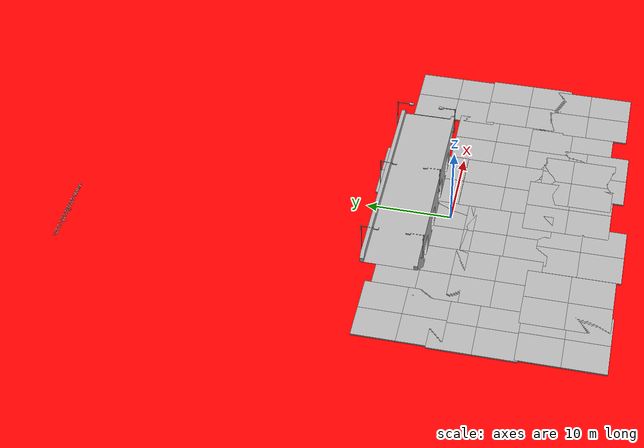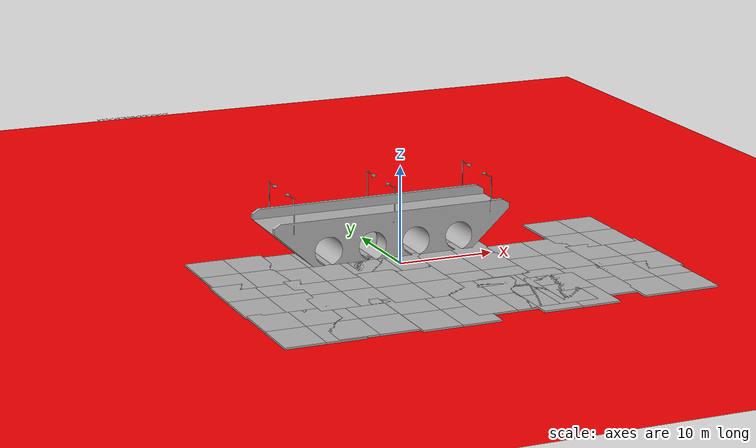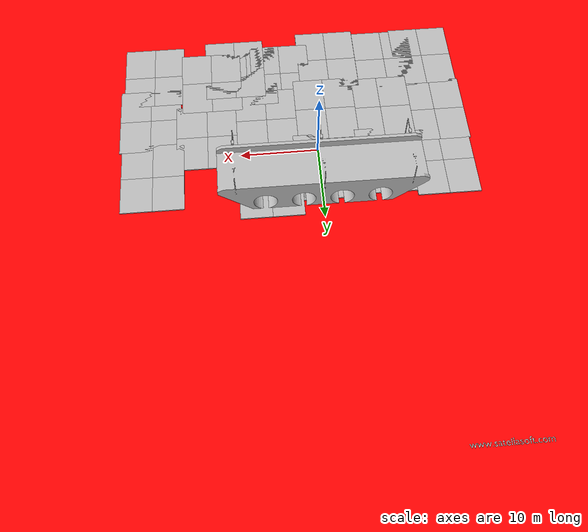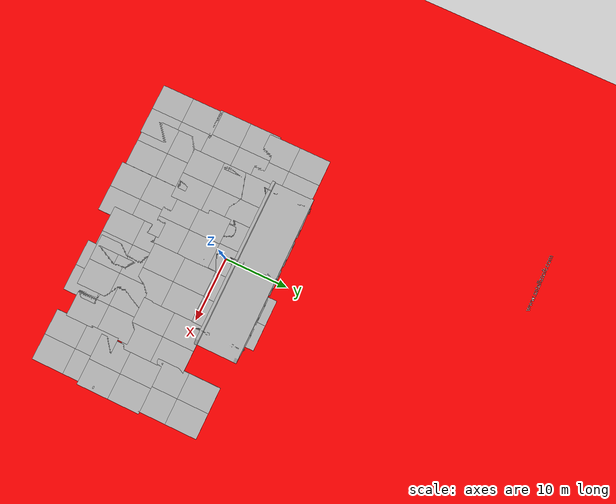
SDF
<sdf version="1.6">
 <world name="default">
  <model name="ground_plane">
   <static>1</static>
   <link name="link">
    <collision name="collision">
     <geometry><plane><normal>0 0 1</normal><size>100 100</size></plane></geometry>
     <surface><friction><ode><mu>100</mu><mu2>50</mu2></ode></friction></surface>
    </collision>
    <visual name="visual">
     <cast_shadows>0</cast_shadows>
     <geometry><plane><normal>0 0 1</normal><size>100 100</size></plane></geometry>
     <material>
      <ambient>1 0 0 1</ambient>
      <diffuse>1 0 0 1</diffuse>
      <specular>0.1 0.1 0.1 1</specular>
      <emissive>0 0 0 0</emissive>
     </material>
    </visual>
   </link>
  </model>
  <model name="my_mesh">
   <pose>0.085822 5.02257 1.16287 0 -0 0</pose>
   <static>1</static>
   <link name="body">
    <visual name="visual">
     <geometry>
      <mesh>
       <uri>file:///home/kevin/catkin_ws/src/hector_quadrotor_tutorial/hector_moveit_gazebo_worlds/Media/models/bridge/meshes/Bridge.dae</uri>
      </mesh>
     </geometry>
    </visual>
    <collision name="collision">
     <geometry>
      <mesh>
       <uri>file:///home/kevin/catkin_ws/src/hector_quadrotor_tutorial/hector_moveit_gazebo_worlds/Media/models/bridge/meshes/Bridge.dae</uri>
      </mesh>
     </geometry>
    </collision>
   </link>
  </model>
  <model name="mud_box">
   <static>1</static>
   <link name="link">
    <collision name="collision"><geometry><box><size>8 10 0.2</size></box></geometry></collision>
    <visual name="visual_1">
     <pose>-2 2.5 0 0 -0 0</pose>
     <cast_shadows>0</cast_shadows>
     <geometry><box><size>4 5 0.2</size></box></geometry>
     <material>
      <script>
       <uri>model://mud_box/materials/scripts</uri>
       <uri>model://mud_box/materials/textures</uri>
       <name>vrc/mud</name>
      </script>
     </material>
    </visual>
    <visual name="visual_2">
     <pose>2 2.5 0 0 -0 0</pose>
     <cast_shadows>0</cast_shadows>
     <geometry><box><size>4 5 0.2</size></box></geometry>
     <material>
      <script>
       <uri>model://mud_box/materials/scripts</uri>
       <uri>model://mud_box/materials/textures</uri>
       <name>vrc/mud</name>
      </script>
     </material>
    </visual>
    <visual name="visual_3">
     <pose>2 -2.5 0 0 -0 0</pose>
     <cast_shadows>0</cast_shadows>
     <geometry><box><size>4 5 0.2</size></box></geometry>
     <material>
      <script>
       <uri>model://mud_box/materials/scripts</uri>
       <uri>model://mud_box/materials/textures</uri>
       <name>vrc/mud</name>
      </script>
     </material>
    </visual>
    <visual name="visual_4">
     <pose>-2 -2.5 0 0 -0 0</pose>
     <cast_shadows>0</cast_shadows>
     <geometry><box><size>4 5 0.2</size></box></geometry>
     <material>
      <script>
       <uri>model://mud_box/materials/scripts</uri>
       <uri>model://mud_box/materials/textures</uri>
       <name>vrc/mud</name>
      </script>
     </material>
    </visual>
   </link>
   <pose>-9.02524 2.09965 0 0 -0 0</pose>
  </model>
  <model name="mud_box_clone">
   <static>1</static>
   <link name="link">
    <collision name="collision"><geometry><box><size>8 10 0.2</size></box></geometry></collision>
    <visual name="visual_1">
     <pose>-2 2.5 0 0 -0 0</pose>
     <cast_shadows>0</cast_shadows>
     <geometry><box><size>4 5 0.2</size></box></geometry>
     <material>
      <script>
       <uri>model://mud_box/materials/scripts</uri>
       <uri>model://mud_box/materials/textures</uri>
       <name>vrc/mud</name>
      </script>
     </material>
    </visual>
    <visual name="visual_2">
     <pose>2 2.5 0 0 -0 0</pose>
     <cast_shadows>0</cast_shadows>
     <geometry><box><size>4 5 0.2</size></box></geometry>
     <material>
      <script>
       <uri>model://mud_box/materials/scripts</uri>
       <uri>model://mud_box/materials/textures</uri>
       <name>vrc/mud</name>
      </script>
     </material>
    </visual>
    <visual name="visual_3">
     <pose>2 -2.5 0 0 -0 0</pose>
     <cast_shadows>0</cast_shadows>
     <geometry><box><size>4 5 0.2</size></box></geometry>
     <material>
      <script>
       <uri>model://mud_box/materials/scripts</uri>
       <uri>model://mud_box/materials/textures</uri>
       <name>vrc/mud</name>
      </script>
     </material>
    </visual>
    <visual name="visual_4">
     <pose>-2 -2.5 0 0 -0 0</pose>
     <cast_shadows>0</cast_shadows>
     <geometry><box><size>4 5 0.2</size></box></geometry>
     <material>
      <script>
       <uri>model://mud_box/materials/scripts</uri>
       <uri>model://mud_box/materials/textures</uri>
       <name>vrc/mud</name>
      </script>
     </material>
    </visual>
   </link>
   <pose>-9.01138 -6.47442 0 0 -0 0</pose>
  </model>
  <model name="mud_box_clone_0">
   <static>1</static>
   <link name="link">
    <collision name="collision"><geometry><box><size>8 10 0.2</size></box></geometry></collision>
    <visual name="visual_1">
     <pose>-2 2.5 0 0 -0 0</pose>
     <cast_shadows>0</cast_shadows>
     <geometry><box><size>4 5 0.2</size></box></geometry>
     <material>
      <script>
       <uri>model://mud_box/materials/scripts</uri>
       <uri>model://mud_box/materials/textures</uri>
       <name>vrc/mud</name>
      </script>
     </material>
    </visual>
    <visual name="visual_2">
     <pose>2 2.5 0 0 -0 0</pose>
     <cast_shadows>0</cast_shadows>
     <geometry><box><size>4 5 0.2</size></box></geometry>
     <material>
      <script>
       <uri>model://mud_box/materials/scripts</uri>
       <uri>model://mud_box/materials/textures</uri>
       <name>vrc/mud</name>
      </script>
     </material>
    </visual>
    <visual name="visual_3">
     <pose>2 -2.5 0 0 -0 0</pose>
     <cast_shadows>0</cast_shadows>
     <geometry><box><size>4 5 0.2</size></box></geometry>
     <material>
      <script>
       <uri>model://mud_box/materials/scripts</uri>
       <uri>model://mud_box/materials/textures</uri>
       <name>vrc/mud</name>
      </script>
     </material>
    </visual>
    <visual name="visual_4">
     <pose>-2 -2.5 0 0 -0 0</pose>
     <cast_shadows>0</cast_shadows>
     <geometry><box><size>4 5 0.2</size></box></geometry>
     <material>
      <script>
       <uri>model://mud_box/materials/scripts</uri>
       <uri>model://mud_box/materials/textures</uri>
       <name>vrc/mud</name>
      </script>
     </material>
    </visual>
   </link>
   <pose>-0.907816 2.44072 0 0 -0 0</pose>
  </model>
  <model name="mud_box_clone_1">
   <static>1</static>
   <link name="link">
    <collision name="collision"><geometry><box><size>8 10 0.2</size></box></geometry></collision>
    <visual name="visual_1">
     <pose>-2 2.5 0 0 -0 0</pose>
     <cast_shadows>0</cast_shadows>
     <geometry><box><size>4 5 0.2</size></box></geometry>
     <material>
      <script>
       <uri>model://mud_box/materials/scripts</uri>
       <uri>model://mud_box/materials/textures</uri>
       <name>vrc/mud</name>
      </script>
     </material>
    </visual>
    <visual name="visual_2">
     <pose>2 2.5 0 0 -0 0</pose>
     <cast_shadows>0</cast_shadows>
     <geometry><box><size>4 5 0.2</size></box></geometry>
     <material>
      <script>
       <uri>model://mud_box/materials/scripts</uri>
       <uri>model://mud_box/materials/textures</uri>
       <name>vrc/mud</name>
      </script>
     </material>
    </visual>
    <visual name="visual_3">
     <pose>2 -2.5 0 0 -0 0</pose>
     <cast_shadows>0</cast_shadows>
     <geometry><box><size>4 5 0.2</size></box></geometry>
     <material>
      <script>
       <uri>model://mud_box/materials/scripts</uri>
       <uri>model://mud_box/materials/textures</uri>
       <name>vrc/mud</name>
      </script>
     </material>
    </visual>
    <visual name="visual_4">
     <pose>-2 -2.5 0 0 -0 0</pose>
     <cast_shadows>0</cast_shadows>
     <geometry><box><size>4 5 0.2</size></box></geometry>
     <material>
      <script>
       <uri>model://mud_box/materials/scripts</uri>
       <uri>model://mud_box/materials/textures</uri>
       <name>vrc/mud</name>
      </script>
     </material>
    </visual>
   </link>
   <pose>-1.61149 -6.78882 0 0 -0 0</pose>
  </model>
  <model name="mud_box_clone_2">
   <static>1</static>
   <link name="link">
    <collision name="collision"><geometry><box><size>8 10 0.2</size></box></geometry></collision>
    <visual name="visual_1">
     <pose>-2 2.5 0 0 -0 0</pose>
     <cast_shadows>0</cast_shadows>
     <geometry><box><size>4 5 0.2</size></box></geometry>
     <material>
      <script>
       <uri>model://mud_box/materials/scripts</uri>
       <uri>model://mud_box/materials/textures</uri>
       <name>vrc/mud</name>
      </script>
     </material>
    </visual>
    <visual name="visual_2">
     <pose>2 2.5 0 0 -0 0</pose>
     <cast_shadows>0</cast_shadows>
     <geometry><box><size>4 5 0.2</size></box></geometry>
     <material>
      <script>
       <uri>model://mud_box/materials/scripts</uri>
       <uri>model://mud_box/materials/textures</uri>
       <name>vrc/mud</name>
      </script>
     </material>
    </visual>
    <visual name="visual_3">
     <pose>2 -2.5 0 0 -0 0</pose>
     <cast_shadows>0</cast_shadows>
     <geometry><box><size>4 5 0.2</size></box></geometry>
     <material>
      <script>
       <uri>model://mud_box/materials/scripts</uri>
       <uri>model://mud_box/materials/textures</uri>
       <name>vrc/mud</name>
      </script>
     </material>
    </visual>
    <visual name="visual_4">
     <pose>-2 -2.5 0 0 -0 0</pose>
     <cast_shadows>0</cast_shadows>
     <geometry><box><size>4 5 0.2</size></box></geometry>
     <material>
      <script>
       <uri>model://mud_box/materials/scripts</uri>
       <uri>model://mud_box/materials/textures</uri>
       <name>vrc/mud</name>
      </script>
     </material>
    </visual>
   </link>
   <pose>6.41573 4.52602 0 0 -0 0</pose>
  </model>
  <model name="mud_box_clone_3">
   <static>1</static>
   <link name="link">
    <collision name="collision"><geometry><box><size>8 10 0.2</size></box></geometry></collision>
    <visual name="visual_1">
     <pose>-2 2.5 0 0 -0 0</pose>
     <cast_shadows>0</cast_shadows>
     <geometry><box><size>4 5 0.2</size></box></geometry>
     <material>
      <script>
       <uri>model://mud_box/materials/scripts</uri>
       <uri>model://mud_box/materials/textures</uri>
       <name>vrc/mud</name>
      </script>
     </material>
    </visual>
    <visual name="visual_2">
     <pose>2 2.5 0 0 -0 0</pose>
     <cast_shadows>0</cast_shadows>
     <geometry><box><size>4 5 0.2</size></box></geometry>
     <material>
      <script>
       <uri>model://mud_box/materials/scripts</uri>
       <uri>model://mud_box/materials/textures</uri>
       <name>vrc/mud</name>
      </script>
     </material>
    </visual>
    <visual name="visual_3">
     <pose>2 -2.5 0 0 -0 0</pose>
     <cast_shadows>0</cast_shadows>
     <geometry><box><size>4 5 0.2</size></box></geometry>
     <material>
      <script>
       <uri>model://mud_box/materials/scripts</uri>
       <uri>model://mud_box/materials/textures</uri>
       <name>vrc/mud</name>
      </script>
     </material>
    </visual>
    <visual name="visual_4">
     <pose>-2 -2.5 0 0 -0 0</pose>
     <cast_shadows>0</cast_shadows>
     <geometry><box><size>4 5 0.2</size></box></geometry>
     <material>
      <script>
       <uri>model://mud_box/materials/scripts</uri>
       <uri>model://mud_box/materials/textures</uri>
       <name>vrc/mud</name>
      </script>
     </material>
    </visual>
   </link>
   <pose>6.33977 -5.49838 0 0 -0 0</pose>
  </model>
  <model name="mud_box_clone_5">
   <static>1</static>
   <link name="link">
    <collision name="collision"><geometry><box><size>8 10 0.2</size></box></geometry></collision>
    <visual name="visual_1">
     <pose>-2 2.5 0 0 -0 0</pose>
     <cast_shadows>0</cast_shadows>
     <geometry><box><size>4 5 0.2</size></box></geometry>
     <material>
      <script>
       <uri>model://mud_box/materials/scripts</uri>
       <uri>model://mud_box/materials/textures</uri>
       <name>vrc/mud</name>
      </script>
     </material>
    </visual>
    <visual name="visual_2">
     <pose>2 2.5 0 0 -0 0</pose>
     <cast_shadows>0</cast_shadows>
     <geometry><box><size>4 5 0.2</size></box></geometry>
     <material>
      <script>
       <uri>model://mud_box/materials/scripts</uri>
       <uri>model://mud_box/materials/textures</uri>
       <name>vrc/mud</name>
      </script>
     </material>
    </visual>
    <visual name="visual_3">
     <pose>2 -2.5 0 0 -0 0</pose>
     <cast_shadows>0</cast_shadows>
     <geometry><box><size>4 5 0.2</size></box></geometry>
     <material>
      <script>
       <uri>model://mud_box/materials/scripts</uri>
       <uri>model://mud_box/materials/textures</uri>
       <name>vrc/mud</name>
      </script>
     </material>
    </visual>
    <visual name="visual_4">
     <pose>-2 -2.5 0 0 -0 0</pose>
     <cast_shadows>0</cast_shadows>
     <geometry><box><size>4 5 0.2</size></box></geometry>
     <material>
      <script>
       <uri>model://mud_box/materials/scripts</uri>
       <uri>model://mud_box/materials/textures</uri>
       <name>vrc/mud</name>
      </script>
     </material>
    </visual>
   </link>
   <pose>14.1998 -3.30517 0 0 -0 0</pose>
  </model>
  <model name="mud_box_clone_6">
   <static>1</static>
   <link name="link">
    <collision name="collision"><geometry><box><size>8 10 0.2</size></box></geometry></collision>
    <visual name="visual_1">
     <pose>-2 2.5 0 0 -0 0</pose>
     <cast_shadows>0</cast_shadows>
     <geometry><box><size>4 5 0.2</size></box></geometry>
     <material>
      <script>
       <uri>model://mud_box/materials/scripts</uri>
       <uri>model://mud_box/materials/textures</uri>
       <name>vrc/mud</name>
      </script>
     </material>
    </visual>
    <visual name="visual_2">
     <pose>2 2.5 0 0 -0 0</pose>
     <cast_shadows>0</cast_shadows>
     <geometry><box><size>4 5 0.2</size></box></geometry>
     <material>
      <script>
       <uri>model://mud_box/materials/scripts</uri>
       <uri>model://mud_box/materials/textures</uri>
       <name>vrc/mud</name>
      </script>
     </material>
    </visual>
    <visual name="visual_3">
     <pose>2 -2.5 0 0 -0 0</pose>
     <cast_shadows>0</cast_shadows>
     <geometry><box><size>4 5 0.2</size></box></geometry>
     <material>
      <script>
       <uri>model://mud_box/materials/scripts</uri>
       <uri>model://mud_box/materials/textures</uri>
       <name>vrc/mud</name>
      </script>
     </material>
    </visual>
    <visual name="visual_4">
     <pose>-2 -2.5 0 0 -0 0</pose>
     <cast_shadows>0</cast_shadows>
     <geometry><box><size>4 5 0.2</size></box></geometry>
     <material>
      <script>
       <uri>model://mud_box/materials/scripts</uri>
       <uri>model://mud_box/materials/textures</uri>
       <name>vrc/mud</name>
      </script>
     </material>
    </visual>
   </link>
   <pose>13.4278 -12.4629 0 0 -0 0</pose>
  </model>
  <model name="mud_box_clone_7">
   <static>1</static>
   <link name="link">
    <collision name="collision"><geometry><box><size>8 10 0.2</size></box></geometry></collision>
    <visual name="visual_1">
     <pose>-2 2.5 0 0 -0 0</pose>
     <cast_shadows>0</cast_shadows>
     <geometry><box><size>4 5 0.2</size></box></geometry>
     <material>
      <script>
       <uri>model://mud_box/materials/scripts</uri>
       <uri>model://mud_box/materials/textures</uri>
       <name>vrc/mud</name>
      </script>
     </material>
    </visual>
    <visual name="visual_2">
     <pose>2 2.5 0 0 -0 0</pose>
     <cast_shadows>0</cast_shadows>
     <geometry><box><size>4 5 0.2</size></box></geometry>
     <material>
      <script>
       <uri>model://mud_box/materials/scripts</uri>
       <uri>model://mud_box/materials/textures</uri>
       <name>vrc/mud</name>
      </script>
     </material>
    </visual>
    <visual name="visual_3">
     <pose>2 -2.5 0 0 -0 0</pose>
     <cast_shadows>0</cast_shadows>
     <geometry><box><size>4 5 0.2</size></box></geometry>
     <material>
      <script>
       <uri>model://mud_box/materials/scripts</uri>
       <uri>model://mud_box/materials/textures</uri>
       <name>vrc/mud</name>
      </script>
     </material>
    </visual>
    <visual name="visual_4">
     <pose>-2 -2.5 0 0 -0 0</pose>
     <cast_shadows>0</cast_shadows>
     <geometry><box><size>4 5 0.2</size></box></geometry>
     <material>
      <script>
       <uri>model://mud_box/materials/scripts</uri>
       <uri>model://mud_box/materials/textures</uri>
       <name>vrc/mud</name>
      </script>
     </material>
    </visual>
   </link>
   <pose>3.9904 -13.3757 0 0 -0 0</pose>
  </model>
  <model name="mud_box_clone_8">
   <static>1</static>
   <link name="link">
    <collision name="collision"><geometry><box><size>8 10 0.2</size></box></geometry></collision>
    <visual name="visual_1">
     <pose>-2 2.5 0 0 -0 0</pose>
     <cast_shadows>0</cast_shadows>
     <geometry><box><size>4 5 0.2</size></box></geometry>
     <material>
      <script>
       <uri>model://mud_box/materials/scripts</uri>
       <uri>model://mud_box/materials/textures</uri>
       <name>vrc/mud</name>
      </script>
     </material>
    </visual>
    <visual name="visual_2">
     <pose>2 2.5 0 0 -0 0</pose>
     <cast_shadows>0</cast_shadows>
     <geometry><box><size>4 5 0.2</size></box></geometry>
     <material>
      <script>
       <uri>model://mud_box/materials/scripts</uri>
       <uri>model://mud_box/materials/textures</uri>
       <name>vrc/mud</name>
      </script>
     </material>
    </visual>
    <visual name="visual_3">
     <pose>2 -2.5 0 0 -0 0</pose>
     <cast_shadows>0</cast_shadows>
     <geometry><box><size>4 5 0.2</size></box></geometry>
     <material>
      <script>
       <uri>model://mud_box/materials/scripts</uri>
       <uri>model://mud_box/materials/textures</uri>
       <name>vrc/mud</name>
      </script>
     </material>
    </visual>
    <visual name="visual_4">
     <pose>-2 -2.5 0 0 -0 0</pose>
     <cast_shadows>0</cast_shadows>
     <geometry><box><size>4 5 0.2</size></box></geometry>
     <material>
      <script>
       <uri>model://mud_box/materials/scripts</uri>
       <uri>model://mud_box/materials/textures</uri>
       <name>vrc/mud</name>
      </script>
     </material>
    </visual>
   </link>
   <pose>8.56451 -13.1819 0 0 -0 0</pose>
  </model>
  <model name="mud_box_clone_9">
   <static>1</static>
   <link name="link">
    <collision name="collision"><geometry><box><size>8 10 0.2</size></box></geometry></collision>
    <visual name="visual_1">
     <pose>-2 2.5 0 0 -0 0</pose>
     <cast_shadows>0</cast_shadows>
     <geometry><box><size>4 5 0.2</size></box></geometry>
     <material>
      <script>
       <uri>model://mud_box/materials/scripts</uri>
       <uri>model://mud_box/materials/textures</uri>
       <name>vrc/mud</name>
      </script>
     </material>
    </visual>
    <visual name="visual_2">
     <pose>2 2.5 0 0 -0 0</pose>
     <cast_shadows>0</cast_shadows>
     <geometry><box><size>4 5 0.2</size></box></geometry>
     <material>
      <script>
       <uri>model://mud_box/materials/scripts</uri>
       <uri>model://mud_box/materials/textures</uri>
       <name>vrc/mud</name>
      </script>
     </material>
    </visual>
    <visual name="visual_3">
     <pose>2 -2.5 0 0 -0 0</pose>
     <cast_shadows>0</cast_shadows>
     <geometry><box><size>4 5 0.2</size></box></geometry>
     <material>
      <script>
       <uri>model://mud_box/materials/scripts</uri>
       <uri>model://mud_box/materials/textures</uri>
       <name>vrc/mud</name>
      </script>
     </material>
    </visual>
    <visual name="visual_4">
     <pose>-2 -2.5 0 0 -0 0</pose>
     <cast_shadows>0</cast_shadows>
     <geometry><box><size>4 5 0.2</size></box></geometry>
     <material>
      <script>
       <uri>model://mud_box/materials/scripts</uri>
       <uri>model://mud_box/materials/textures</uri>
       <name>vrc/mud</name>
      </script>
     </material>
    </visual>
   </link>
   <pose>-2.58874 -15.4114 0 0 -0 0</pose>
  </model>
  <model name="mud_box_clone_10">
   <static>1</static>
   <link name="link">
    <collision name="collision"><geometry><box><size>8 10 0.2</size></box></geometry></collision>
    <visual name="visual_1">
     <pose>-2 2.5 0 0 -0 0</pose>
     <cast_shadows>0</cast_shadows>
     <geometry><box><size>4 5 0.2</size></box></geometry>
     <material>
      <script>
       <uri>model://mud_box/materials/scripts</uri>
       <uri>model://mud_box/materials/textures</uri>
       <name>vrc/mud</name>
      </script>
     </material>
    </visual>
    <visual name="visual_2">
     <pose>2 2.5 0 0 -0 0</pose>
     <cast_shadows>0</cast_shadows>
     <geometry><box><size>4 5 0.2</size></box></geometry>
     <material>
      <script>
       <uri>model://mud_box/materials/scripts</uri>
       <uri>model://mud_box/materials/textures</uri>
       <name>vrc/mud</name>
      </script>
     </material>
    </visual>
    <visual name="visual_3">
     <pose>2 -2.5 0 0 -0 0</pose>
     <cast_shadows>0</cast_shadows>
     <geometry><box><size>4 5 0.2</size></box></geometry>
     <material>
      <script>
       <uri>model://mud_box/materials/scripts</uri>
       <uri>model://mud_box/materials/textures</uri>
       <name>vrc/mud</name>
      </script>
     </material>
    </visual>
    <visual name="visual_4">
     <pose>-2 -2.5 0 0 -0 0</pose>
     <cast_shadows>0</cast_shadows>
     <geometry><box><size>4 5 0.2</size></box></geometry>
     <material>
      <script>
       <uri>model://mud_box/materials/scripts</uri>
       <uri>model://mud_box/materials/textures</uri>
       <name>vrc/mud</name>
      </script>
     </material>
    </visual>
   </link>
   <pose>-10.6003 -14.8746 0 0 -0 0</pose>
  </model>
  <model name="mud_box_clone_11">
   <static>1</static>
   <link name="link">
    <collision name="collision"><geometry><box><size>8 10 0.2</size></box></geometry></collision>
    <visual name="visual_1">
     <pose>-2 2.5 0 0 -0 0</pose>
     <cast_shadows>0</cast_shadows>
     <geometry><box><size>4 5 0.2</size></box></geometry>
     <material>
      <script>
       <uri>model://mud_box/materials/scripts</uri>
       <uri>model://mud_box/materials/textures</uri>
       <name>vrc/mud</name>
      </script>
     </material>
    </visual>
    <visual name="visual_2">
     <pose>2 2.5 0 0 -0 0</pose>
     <cast_shadows>0</cast_shadows>
     <geometry><box><size>4 5 0.2</size></box></geometry>
     <material>
      <script>
       <uri>model://mud_box/materials/scripts</uri>
       <uri>model://mud_box/materials/textures</uri>
       <name>vrc/mud</name>
      </script>
     </material>
    </visual>
    <visual name="visual_3">
     <pose>2 -2.5 0 0 -0 0</pose>
     <cast_shadows>0</cast_shadows>
     <geometry><box><size>4 5 0.2</size></box></geometry>
     <material>
      <script>
       <uri>model://mud_box/materials/scripts</uri>
       <uri>model://mud_box/materials/textures</uri>
       <name>vrc/mud</name>
      </script>
     </material>
    </visual>
    <visual name="visual_4">
     <pose>-2 -2.5 0 0 -0 0</pose>
     <cast_shadows>0</cast_shadows>
     <geometry><box><size>4 5 0.2</size></box></geometry>
     <material>
      <script>
       <uri>model://mud_box/materials/scripts</uri>
       <uri>model://mud_box/materials/textures</uri>
       <name>vrc/mud</name>
      </script>
     </material>
    </visual>
   </link>
   <pose>-16.1399 -5.49382 0 0 -0 0</pose>
  </model>
  <model name="mud_box_clone_12">
   <static>1</static>
   <link name="link">
    <collision name="collision"><geometry><box><size>8 10 0.2</size></box></geometry></collision>
    <visual name="visual_1">
     <pose>-2 2.5 0 0 -0 0</pose>
     <cast_shadows>0</cast_shadows>
     <geometry><box><size>4 5 0.2</size></box></geometry>
     <material>
      <script>
       <uri>model://mud_box/materials/scripts</uri>
       <uri>model://mud_box/materials/textures</uri>
       <name>vrc/mud</name>
      </script>
     </material>
    </visual>
    <visual name="visual_2">
     <pose>2 2.5 0 0 -0 0</pose>
     <cast_shadows>0</cast_shadows>
     <geometry><box><size>4 5 0.2</size></box></geometry>
     <material>
      <script>
       <uri>model://mud_box/materials/scripts</uri>
       <uri>model://mud_box/materials/textures</uri>
       <name>vrc/mud</name>
      </script>
     </material>
    </visual>
    <visual name="visual_3">
     <pose>2 -2.5 0 0 -0 0</pose>
     <cast_shadows>0</cast_shadows>
     <geometry><box><size>4 5 0.2</size></box></geometry>
     <material>
      <script>
       <uri>model://mud_box/materials/scripts</uri>
       <uri>model://mud_box/materials/textures</uri>
       <name>vrc/mud</name>
      </script>
     </material>
    </visual>
    <visual name="visual_4">
     <pose>-2 -2.5 0 0 -0 0</pose>
     <cast_shadows>0</cast_shadows>
     <geometry><box><size>4 5 0.2</size></box></geometry>
     <material>
      <script>
       <uri>model://mud_box/materials/scripts</uri>
       <uri>model://mud_box/materials/textures</uri>
       <name>vrc/mud</name>
      </script>
     </material>
    </visual>
   </link>
   <pose>-15.9101 2.82816 0 0 -0 0</pose>
  </model>
  <model name="mud_box_clone_13">
   <static>1</static>
   <link name="link">
    <collision name="collision"><geometry><box><size>8 10 0.2</size></box></geometry></collision>
    <visual name="visual_1">
     <pose>-2 2.5 0 0 -0 0</pose>
     <cast_shadows>0</cast_shadows>
     <geometry><box><size>4 5 0.2</size></box></geometry>
     <material>
      <script>
       <uri>model://mud_box/materials/scripts</uri>
       <uri>model://mud_box/materials/textures</uri>
       <name>vrc/mud</name>
      </script>
     </material>
    </visual>
    <visual name="visual_2">
     <pose>2 2.5 0 0 -0 0</pose>
     <cast_shadows>0</cast_shadows>
     <geometry><box><size>4 5 0.2</size></box></geometry>
     <material>
      <script>
       <uri>model://mud_box/materials/scripts</uri>
       <uri>model://mud_box/materials/textures</uri>
       <name>vrc/mud</name>
      </script>
     </material>
    </visual>
    <visual name="visual_3">
     <pose>2 -2.5 0 0 -0 0</pose>
     <cast_shadows>0</cast_shadows>
     <geometry><box><size>4 5 0.2</size></box></geometry>
     <material>
      <script>
       <uri>model://mud_box/materials/scripts</uri>
       <uri>model://mud_box/materials/textures</uri>
       <name>vrc/mud</name>
      </script>
     </material>
    </visual>
    <visual name="visual_4">
     <pose>-2 -2.5 0 0 -0 0</pose>
     <cast_shadows>0</cast_shadows>
     <geometry><box><size>4 5 0.2</size></box></geometry>
     <material>
      <script>
       <uri>model://mud_box/materials/scripts</uri>
       <uri>model://mud_box/materials/textures</uri>
       <name>vrc/mud</name>
      </script>
     </material>
    </visual>
   </link>
   <pose>-15.9438 -15.0899 0 0 -0 0</pose>
  </model>
  <model name="mud_box_clone_8_clone_clone_12">
   <static>1</static>
   <link name="link">
    <collision name="collision"><geometry><box><size>8 10 0.2</size></box></geometry></collision>
    <visual name="visual_1">
     <pose>-2 2.5 0 0 -0 0</pose>
     <cast_shadows>0</cast_shadows>
     <geometry><box><size>4 5 0.2</size></box></geometry>
     <material>
      <script>
       <uri>model://mud_box/materials/scripts</uri>
       <uri>model://mud_box/materials/textures</uri>
       <name>vrc/mud</name>
      </script>
     </material>
    </visual>
    <visual name="visual_2">
     <pose>2 2.5 0 0 -0 0</pose>
     <cast_shadows>0</cast_shadows>
     <geometry><box><size>4 5 0.2</size></box></geometry>
     <material>
      <script>
       <uri>model://mud_box/materials/scripts</uri>
       <uri>model://mud_box/materials/textures</uri>
       <name>vrc/mud</name>
      </script>
     </material>
    </visual>
    <visual name="visual_3">
     <pose>2 -2.5 0 0 -0 0</pose>
     <cast_shadows>0</cast_shadows>
     <geometry><box><size>4 5 0.2</size></box></geometry>
     <material>
      <script>
       <uri>model://mud_box/materials/scripts</uri>
       <uri>model://mud_box/materials/textures</uri>
       <name>vrc/mud</name>
      </script>
     </material>
    </visual>
    <visual name="visual_4">
     <pose>-2 -2.5 0 0 -0 0</pose>
     <cast_shadows>0</cast_shadows>
     <geometry><box><size>4 5 0.2</size></box></geometry>
     <material>
      <script>
       <uri>model://mud_box/materials/scripts</uri>
       <uri>model://mud_box/materials/textures</uri>
       <name>vrc/mud</name>
      </script>
     </material>
    </visual>
   </link>
   <pose>21.1697 -14.034 0 0 -0 0</pose>
  </model>
  <model name="mud_box_clone_8_clone_clone_13">
   <static>1</static>
   <link name="link">
    <collision name="collision"><geometry><box><size>8 10 0.2</size></box></geometry></collision>
    <visual name="visual_1">
     <pose>-2 2.5 0 0 -0 0</pose>
     <cast_shadows>0</cast_shadows>
     <geometry><box><size>4 5 0.2</size></box></geometry>
     <material>
      <script>
       <uri>model://mud_box/materials/scripts</uri>
       <uri>model://mud_box/materials/textures</uri>
       <name>vrc/mud</name>
      </script>
     </material>
    </visual>
    <visual name="visual_2">
     <pose>2 2.5 0 0 -0 0</pose>
     <cast_shadows>0</cast_shadows>
     <geometry><box><size>4 5 0.2</size></box></geometry>
     <material>
      <script>
       <uri>model://mud_box/materials/scripts</uri>
       <uri>model://mud_box/materials/textures</uri>
       <name>vrc/mud</name>
      </script>
     </material>
    </visual>
    <visual name="visual_3">
     <pose>2 -2.5 0 0 -0 0</pose>
     <cast_shadows>0</cast_shadows>
     <geometry><box><size>4 5 0.2</size></box></geometry>
     <material>
      <script>
       <uri>model://mud_box/materials/scripts</uri>
       <uri>model://mud_box/materials/textures</uri>
       <name>vrc/mud</name>
      </script>
     </material>
    </visual>
    <visual name="visual_4">
     <pose>-2 -2.5 0 0 -0 0</pose>
     <cast_shadows>0</cast_shadows>
     <geometry><box><size>4 5 0.2</size></box></geometry>
     <material>
      <script>
       <uri>model://mud_box/materials/scripts</uri>
       <uri>model://mud_box/materials/textures</uri>
       <name>vrc/mud</name>
      </script>
     </material>
    </visual>
   </link>
   <pose>21.6087 -6.52247 0 0 -0 0</pose>
  </model>
  <model name="mud_box_clone_8_clone_clone_14">
   <static>1</static>
   <link name="link">
    <collision name="collision"><geometry><box><size>8 10 0.2</size></box></geometry></collision>
    <visual name="visual_1">
     <pose>-2 2.5 0 0 -0 0</pose>
     <cast_shadows>0</cast_shadows>
     <geometry><box><size>4 5 0.2</size></box></geometry>
     <material>
      <script>
       <uri>model://mud_box/materials/scripts</uri>
       <uri>model://mud_box/materials/textures</uri>
       <name>vrc/mud</name>
      </script>
     </material>
    </visual>
    <visual name="visual_2">
     <pose>2 2.5 0 0 -0 0</pose>
     <cast_shadows>0</cast_shadows>
     <geometry><box><size>4 5 0.2</size></box></geometry>
     <material>
      <script>
       <uri>model://mud_box/materials/scripts</uri>
       <uri>model://mud_box/materials/textures</uri>
       <name>vrc/mud</name>
      </script>
     </material>
    </visual>
    <visual name="visual_3">
     <pose>2 -2.5 0 0 -0 0</pose>
     <cast_shadows>0</cast_shadows>
     <geometry><box><size>4 5 0.2</size></box></geometry>
     <material>
      <script>
       <uri>model://mud_box/materials/scripts</uri>
       <uri>model://mud_box/materials/textures</uri>
       <name>vrc/mud</name>
      </script>
     </material>
    </visual>
    <visual name="visual_4">
     <pose>-2 -2.5 0 0 -0 0</pose>
     <cast_shadows>0</cast_shadows>
     <geometry><box><size>4 5 0.2</size></box></geometry>
     <material>
      <script>
       <uri>model://mud_box/materials/scripts</uri>
       <uri>model://mud_box/materials/textures</uri>
       <name>vrc/mud</name>
      </script>
     </material>
    </visual>
   </link>
   <pose>21.2715 2.53707 0 0 -0 0</pose>
  </model>
  <model name="mud_box_clone_8_clone_clone_2_clone">
   <static>1</static>
   <link name="link">
    <collision name="collision"><geometry><box><size>8 10 0.2</size></box></geometry></collision>
    <visual name="visual_1">
     <pose>-2 2.5 0 0 -0 0</pose>
     <cast_shadows>0</cast_shadows>
     <geometry><box><size>4 5 0.2</size></box></geometry>
     <material>
      <script>
       <uri>model://mud_box/materials/scripts</uri>
       <uri>model://mud_box/materials/textures</uri>
       <name>vrc/mud</name>
      </script>
     </material>
    </visual>
    <visual name="visual_2">
     <pose>2 2.5 0 0 -0 0</pose>
     <cast_shadows>0</cast_shadows>
     <geometry><box><size>4 5 0.2</size></box></geometry>
     <material>
      <script>
       <uri>model://mud_box/materials/scripts</uri>
       <uri>model://mud_box/materials/textures</uri>
       <name>vrc/mud</name>
      </script>
     </material>
    </visual>
    <visual name="visual_3">
     <pose>2 -2.5 0 0 -0 0</pose>
     <cast_shadows>0</cast_shadows>
     <geometry><box><size>4 5 0.2</size></box></geometry>
     <material>
      <script>
       <uri>model://mud_box/materials/scripts</uri>
       <uri>model://mud_box/materials/textures</uri>
       <name>vrc/mud</name>
      </script>
     </material>
    </visual>
    <visual name="visual_4">
     <pose>-2 -2.5 0 0 -0 0</pose>
     <cast_shadows>0</cast_shadows>
     <geometry><box><size>4 5 0.2</size></box></geometry>
     <material>
      <script>
       <uri>model://mud_box/materials/scripts</uri>
       <uri>model://mud_box/materials/textures</uri>
       <name>vrc/mud</name>
      </script>
     </material>
    </visual>
   </link>
   <pose>10.1733 -14.6116 0 0 -0 0</pose>
  </model>
  <model name="mud_box_clone_1_clone">
   <static>1</static>
   <link name="link">
    <collision name="collision"><geometry><box><size>8 10 0.2</size></box></geometry></collision>
    <visual name="visual_1">
     <pose>-2 2.5 0 0 -0 0</pose>
     <cast_shadows>0</cast_shadows>
     <geometry><box><size>4 5 0.2</size></box></geometry>
     <material>
      <script>
       <uri>model://mud_box/materials/scripts</uri>
       <uri>model://mud_box/materials/textures</uri>
       <name>vrc/mud</name>
      </script>
     </material>
    </visual>
    <visual name="visual_2">
     <pose>2 2.5 0 0 -0 0</pose>
     <cast_shadows>0</cast_shadows>
     <geometry><box><size>4 5 0.2</size></box></geometry>
     <material>
      <script>
       <uri>model://mud_box/materials/scripts</uri>
       <uri>model://mud_box/materials/textures</uri>
       <name>vrc/mud</name>
      </script>
     </material>
    </visual>
    <visual name="visual_3">
     <pose>2 -2.5 0 0 -0 0</pose>
     <cast_shadows>0</cast_shadows>
     <geometry><box><size>4 5 0.2</size></box></geometry>
     <material>
      <script>
       <uri>model://mud_box/materials/scripts</uri>
       <uri>model://mud_box/materials/textures</uri>
       <name>vrc/mud</name>
      </script>
     </material>
    </visual>
    <visual name="visual_4">
     <pose>-2 -2.5 0 0 -0 0</pose>
     <cast_shadows>0</cast_shadows>
     <geometry><box><size>4 5 0.2</size></box></geometry>
     <material>
      <script>
       <uri>model://mud_box/materials/scripts</uri>
       <uri>model://mud_box/materials/textures</uri>
       <name>vrc/mud</name>
      </script>
     </material>
    </visual>
   </link>
   <pose>-1.71818 2.10584 0 0 -0 0</pose>
  </model>
 </world>
</sdf>
